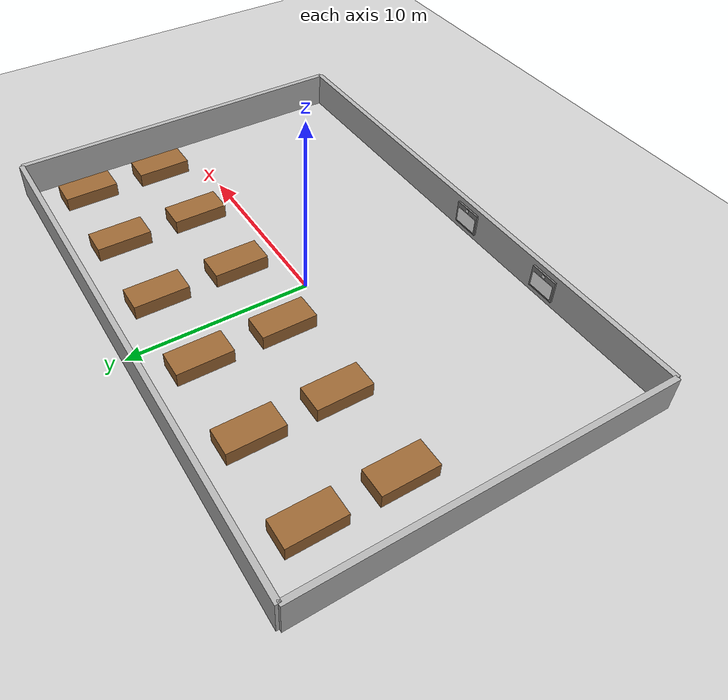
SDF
<sdf version="1.6">
 <world name="challenging_cafeteria">
  <light type="directional" name="sun">
   <pose>0 0 10 0 0 0</pose>
   <diffuse>0.8 0.8 0.8 1</diffuse>
   <direction>-0.5 0.1 -0.9</direction>
  </light>
  <scene><ambient>0.4 0.4 0.4 1</ambient><background>0.7 0.7 0.7 1</background><shadows>true</shadows></scene>
  <model name="ground_plane">
   <static>true</static>
   <link name="link">
    <collision name="collision">
     <geometry><plane><normal>0 0 1</normal><size>60 60</size></plane></geometry>
    </collision>
    <visual name="visual">
     <geometry><plane><normal>0 0 1</normal><size>60 60</size></plane></geometry>
     <material>
      <ambient>0.8 0.8 0.8 1</ambient>
      <diffuse>0.8 0.8 0.8 1</diffuse>
      <specular>0.8 0.8 0.8 1</specular>
     </material>
    </visual>
   </link>
  </model>
  <model name="left_wall_poster_area">
   <static>true</static>
   <pose>0 -10 1 0 0 0</pose>
   <link name="wall_link">
    <collision name="collision"><geometry><box><size>30 0.3 2</size></box></geometry></collision>
    <visual name="visual">
     <geometry><box><size>30 0.3 2</size></box></geometry>
     <material><ambient>0.7 0.7 0.7 1</ambient></material>
    </visual>
   </link>
  </model>
  <model name="right_wall">
   <static>true</static>
   <pose>0 10 1 0 0 0</pose>
   <link name="wall_link">
    <collision name="collision"><geometry><box><size>30 0.3 2</size></box></geometry></collision>
    <visual name="visual">
     <geometry><box><size>30 0.3 2</size></box></geometry>
     <material><ambient>0.7 0.7 0.7 1</ambient></material>
    </visual>
   </link>
  </model>
  <model name="back_wall">
   <static>true</static>
   <pose>-15 0 1 0 0 1.57</pose>
   <link name="wall_link">
    <collision name="collision"><geometry><box><size>20 0.3 2</size></box></geometry></collision>
    <visual name="visual">
     <geometry><box><size>20 0.3 2</size></box></geometry>
     <material><ambient>0.7 0.7 0.7 1</ambient></material>
    </visual>
   </link>
  </model>
  <model name="front_wall">
   <static>true</static>
   <pose>15 0 1 0 0 1.57</pose>
   <link name="wall_link">
    <collision name="collision"><geometry><box><size>20 0.3 2</size></box></geometry></collision>
    <visual name="visual">
     <geometry><box><size>20 0.3 2</size></box></geometry>
     <material><ambient>0.7 0.7 0.7 1</ambient></material>
    </visual>
   </link>
  </model>
  <model name="table_row1_1">
   <static>true</static>
   <pose>-12 2.5 0.4 0 0 0</pose>
   <link name="link">
    <collision name="c"><geometry><box><size>1.5 3.0 0.8</size></box></geometry></collision>
    <visual name="v">
     <geometry><box><size>1.5 3.0 0.8</size></box></geometry>
     <material><ambient>0.6 0.4 0.2 1</ambient></material>
    </visual>
   </link>
  </model>
  <model name="table_row1_2">
   <static>true</static>
   <pose>-7 2.5 0.4 0 0 0</pose>
   <link name="link">
    <collision name="c"><geometry><box><size>1.5 3.0 0.8</size></box></geometry></collision>
    <visual name="v">
     <geometry><box><size>1.5 3.0 0.8</size></box></geometry>
     <material><ambient>0.6 0.4 0.2 1</ambient></material>
    </visual>
   </link>
  </model>
  <model name="table_row1_3">
   <static>true</static>
   <pose>-2 2.5 0.4 0 0 0</pose>
   <link name="link">
    <collision name="c"><geometry><box><size>1.5 3.0 0.8</size></box></geometry></collision>
    <visual name="v">
     <geometry><box><size>1.5 3.0 0.8</size></box></geometry>
     <material><ambient>0.6 0.4 0.2 1</ambient></material>
    </visual>
   </link>
  </model>
  <model name="table_row1_4">
   <static>true</static>
   <pose>3 2.5 0.4 0 0 0</pose>
   <link name="link">
    <collision name="c"><geometry><box><size>1.5 3.0 0.8</size></box></geometry></collision>
    <visual name="v">
     <geometry><box><size>1.5 3.0 0.8</size></box></geometry>
     <material><ambient>0.6 0.4 0.2 1</ambient></material>
    </visual>
   </link>
  </model>
  <model name="table_row1_5">
   <static>true</static>
   <pose>8 2.5 0.4 0 0 0</pose>
   <link name="link">
    <collision name="c"><geometry><box><size>1.5 3.0 0.8</size></box></geometry></collision>
    <visual name="v">
     <geometry><box><size>1.5 3.0 0.8</size></box></geometry>
     <material><ambient>0.6 0.4 0.2 1</ambient></material>
    </visual>
   </link>
  </model>
  <model name="table_row1_6">
   <static>true</static>
   <pose>13 2.5 0.4 0 0 0</pose>
   <link name="link">
    <collision name="c"><geometry><box><size>1.5 3.0 0.8</size></box></geometry></collision>
    <visual name="v">
     <geometry><box><size>1.5 3.0 0.8</size></box></geometry>
     <material><ambient>0.6 0.4 0.2 1</ambient></material>
    </visual>
   </link>
  </model>
  <model name="table_row2_1">
   <static>true</static>
   <pose>-12 7.0 0.4 0 0 0</pose>
   <link name="link">
    <collision name="c"><geometry><box><size>1.5 3.0 0.8</size></box></geometry></collision>
    <visual name="v">
     <geometry><box><size>1.5 3.0 0.8</size></box></geometry>
     <material><ambient>0.6 0.4 0.2 1</ambient></material>
    </visual>
   </link>
  </model>
  <model name="table_row2_2">
   <static>true</static>
   <pose>-7 7.0 0.4 0 0 0</pose>
   <link name="link">
    <collision name="c"><geometry><box><size>1.5 3.0 0.8</size></box></geometry></collision>
    <visual name="v">
     <geometry><box><size>1.5 3.0 0.8</size></box></geometry>
     <material><ambient>0.6 0.4 0.2 1</ambient></material>
    </visual>
   </link>
  </model>
  <model name="table_row2_3">
   <static>true</static>
   <pose>-2 7.0 0.4 0 0 0</pose>
   <link name="link">
    <collision name="c"><geometry><box><size>1.5 3.0 0.8</size></box></geometry></collision>
    <visual name="v">
     <geometry><box><size>1.5 3.0 0.8</size></box></geometry>
     <material><ambient>0.6 0.4 0.2 1</ambient></material>
    </visual>
   </link>
  </model>
  <model name="table_row2_4">
   <static>true</static>
   <pose>3 7.0 0.4 0 0 0</pose>
   <link name="link">
    <collision name="c"><geometry><box><size>1.5 3.0 0.8</size></box></geometry></collision>
    <visual name="v">
     <geometry><box><size>1.5 3.0 0.8</size></box></geometry>
     <material><ambient>0.6 0.4 0.2 1</ambient></material>
    </visual>
   </link>
  </model>
  <model name="table_row2_5">
   <static>true</static>
   <pose>8 7.0 0.4 0 0 0</pose>
   <link name="link">
    <collision name="c"><geometry><box><size>1.5 3.0 0.8</size></box></geometry></collision>
    <visual name="v">
     <geometry><box><size>1.5 3.0 0.8</size></box></geometry>
     <material><ambient>0.6 0.4 0.2 1</ambient></material>
    </visual>
   </link>
  </model>
  <model name="table_row2_6">
   <static>true</static>
   <pose>13 7.0 0.4 0 0 0</pose>
   <link name="link">
    <collision name="c"><geometry><box><size>1.5 3.0 0.8</size></box></geometry></collision>
    <visual name="v">
     <geometry><box><size>1.5 3.0 0.8</size></box></geometry>
     <material><ambient>0.6 0.4 0.2 1</ambient></material>
    </visual>
   </link>
  </model>
  <include>
   <uri>model://poster_board_2</uri>
   <name>noticeboard_2</name>
   <pose>-7 -9.6 1.25 0 0 1.57</pose>
  </include>
  <include>
   <uri>model://poster_board_3</uri>
   <name>noticeboard_3</name>
   <pose>-1 -9.6 1.25 0 0 1.57</pose>
  </include>
 </world>
</sdf>

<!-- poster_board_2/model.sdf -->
<sdf version="1.8">
  <model name="poster_board">
    <static>true</static>
    <link name="link">
      <!-- Çerçeve (Gri Renk) -->
      <visual name="frame">
        <geometry>
          <box>
            <size>0.1 1.6 1.3</size>
          </box>
        </geometry>
        <material>
          <ambient>0.5 0.5 0.5 1</ambient>
          <diffuse>0.5 0.5 0.5 1</diffuse>
        </material>
      </visual>

      <!-- Poster İçeriği -->
      <visual name="poster">
        <pose>0.06 0 -0.1 0 0 0</pose> <!-- Biraz aşağı kaydırdık -->
        <geometry>
          <box>
            <size>0.01 1.4 0.9</size> <!-- Yüksekliği azalttık -->
          </box>
        </geometry>
        <material>
          <ambient>1 1 1 1</ambient>
          <diffuse>1 1 1 1</diffuse>
          <pbr>
            <metal>
              <albedo_map>materials/textures/poster2.jpeg</albedo_map>
            </metal>
          </pbr>
        </material>
      </visual>

      <!-- ArUco Marker (Tepeye) -->
      <visual name="aruco_marker">
        <pose>0.065 0 0.5 0 0 0</pose> <!-- Çerçevenin üst kısmına yakın -->
        <geometry>
          <box>
            <size>0.01 0.2 0.2</size> <!-- 20cm x 20cm Marker -->
          </box>
        </geometry>
        <material>
          <ambient>1 1 1 1</ambient>
          <diffuse>1 1 1 1</diffuse>
          <pbr>
            <metal>
              <albedo_map>materials/textures/aruco_marker.png</albedo_map>
            </metal>
          </pbr>
        </material>
      </visual>

      <!-- Collision -->
       <collision name="collision">
        <geometry>
          <box>
            <size>0.1 1.6 1.3</size>
          </box>
        </geometry>
      </collision>
    </link>
  </model>
</sdf>

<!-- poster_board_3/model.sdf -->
<sdf version="1.8">
  <model name="poster_board">
    <static>true</static>
    <link name="link">
      <!-- Çerçeve (Gri Renk) -->
      <visual name="frame">
        <geometry>
          <box>
            <size>0.1 1.6 1.3</size>
          </box>
        </geometry>
        <material>
          <ambient>0.5 0.5 0.5 1</ambient>
          <diffuse>0.5 0.5 0.5 1</diffuse>
        </material>
      </visual>

      <!-- Poster İçeriği -->
      <visual name="poster">
        <pose>0.06 0 -0.1 0 0 0</pose> <!-- Biraz aşağı kaydırdık -->
        <geometry>
          <box>
            <size>0.01 1.4 0.9</size> <!-- Yüksekliği azalttık -->
          </box>
        </geometry>
        <material>
          <ambient>1 1 1 1</ambient>
          <diffuse>1 1 1 1</diffuse>
          <pbr>
            <metal>
              <albedo_map>materials/textures/poster3.jpeg</albedo_map>
            </metal>
          </pbr>
        </material>
      </visual>

      <!-- ArUco Marker (Tepeye) -->
      <visual name="aruco_marker">
        <pose>0.065 0 0.5 0 0 0</pose> <!-- Çerçevenin üst kısmına yakın -->
        <geometry>
          <box>
            <size>0.01 0.2 0.2</size> <!-- 20cm x 20cm Marker -->
          </box>
        </geometry>
        <material>
          <ambient>1 1 1 1</ambient>
          <diffuse>1 1 1 1</diffuse>
          <pbr>
            <metal>
              <albedo_map>materials/textures/aruco_marker.png</albedo_map>
            </metal>
          </pbr>
        </material>
      </visual>

      <!-- Collision -->
       <collision name="collision">
        <geometry>
          <box>
            <size>0.1 1.6 1.3</size>
          </box>
        </geometry>
      </collision>
    </link>
  </model>
</sdf>
